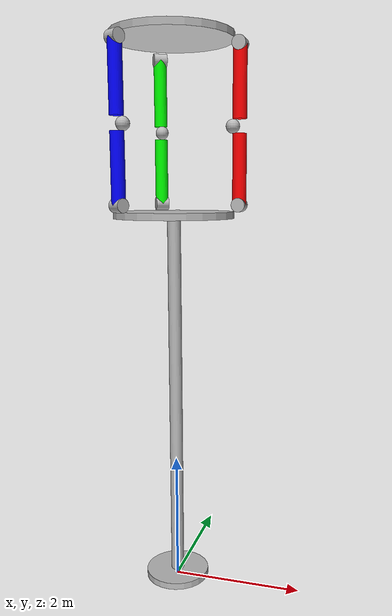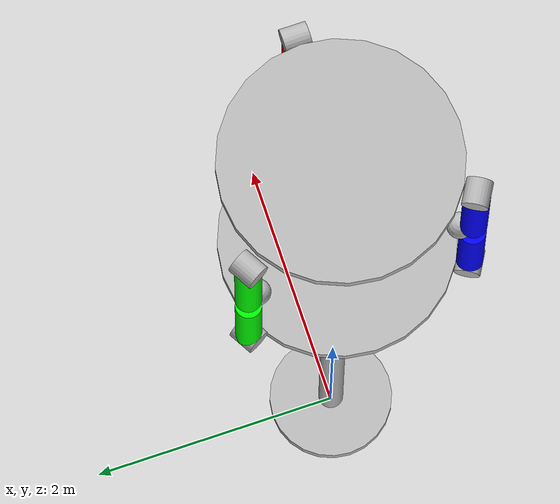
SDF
<sdf version='1.6'>
	<model name='tsst'>
		<self_collide>true</self_collide>

		<link name='pedestal'>
			<pose frame=''>0 0 0 0 -0 0</pose>
			<inertial>
				<pose frame=''>0 0 0 0 -0 0</pose>
				<mass>2</mass>
				<inertia>
					<ixx>6.65125</ixx>
					<ixy>0</ixy>
					<ixz>0</ixz>
					<iyy>6.65125</iyy>
					<iyz>4.44089e-16</iyz>
					<izz>2</izz>
				</inertia>
			</inertial>

			<visual name='pedestal_pole_visual'>
				<pose frame=''>0 0 2.9 0 -0 0</pose>
				<geometry>
					<cylinder>
						<length>5.8</length>
						<radius>0.1</radius>
					</cylinder>
				</geometry>
			</visual>

			<visual name='pedestal_base_visual'>
				<pose frame=''>0 0 0.05 0 -0 0</pose>
				<geometry>
					<cylinder>
						<length>0.1</length>
						<radius>0.5</radius>
					</cylinder>
				</geometry>
			</visual>
		</link>

		<joint name='glue_pedestal_to_world' type='revolute'>
			<child>pedestal</child>
			<parent>world</parent>
			<axis>
				<limit>
					<lower>0</lower>
					<upper>0</upper>
				</limit>
				<dynamics>
					<damping>0</damping>
					<friction>0</friction>
					<spring_reference>0</spring_reference>
					<spring_stiffness>0</spring_stiffness>
				</dynamics>
				<use_parent_model_frame>1</use_parent_model_frame>
				<xyz>0 0 1</xyz>
			</axis>
		</joint>

		<link name='base_plate'>
			<pose frame=''>0 0 5.85 0 -0 0</pose>
			<visual name='base_plate_visual'>
				<pose frame=''>0 0 0 0 -0 0</pose>
				<geometry>
					<cylinder>
						<length>0.1</length>
						<radius>0.9</radius>
					</cylinder>
				</geometry>
			</visual>
			<collision name='base_plate_collision'>
				<pose frame=''>0 0 0 0 -0 0</pose>
				<geometry>
					<cylinder>
						<length>0.1</length>
						<radius>0.9</radius>
					</cylinder>
				</geometry>
			</collision>
		</link>

		<joint name='glue_base_to_pedestal' type='revolute'>
			<child>base_plate</child>
			<parent>pedestal</parent>
			<axis>
				<limit>
					<lower>0</lower>
					<upper>0</upper>
				</limit>
				<dynamics>
					<damping>0</damping>
					<friction>0</friction>
					<spring_reference>0</spring_reference>
					<spring_stiffness>0</spring_stiffness>
				</dynamics>
				<use_parent_model_frame>1</use_parent_model_frame>
				<xyz>0 0 1</xyz>
			</axis>
		</joint>

		<link name='base_leg_1'>
			<pose frame=''>1 0 6 0 -0 0</pose>
			<visual name='base_leg_1_visual'>
				<pose frame=''>0 0 0.5 0 -0 0</pose>
				<geometry>
					<cylinder>
						<length>1.0</length>
						<radius>0.1</radius>
					</cylinder>
				</geometry>
				<material>
					<ambient>0.5 0 0 1</ambient>
					<diffuse>1.0 0 0 1</diffuse>
					<specular>0.1 0.1 0.1 1</specular>
					<emissive>0 0 0 0</emissive>
				</material>
			</visual>
			<collision name='base_leg_1_collision'>
				<pose frame=''>0 0 0.5 0 -0 0</pose>
				<geometry>
					<cylinder>
						<length>1.0</length>
						<radius>0.1</radius>
					</cylinder>
				</geometry>
			</collision>
			<inertial>
				<pose frame=''>0 0 0.5 0 -0 0</pose>
				<mass>1</mass>
				<inertia>
					<ixx>0.1</ixx>
					<ixy>0</ixy>
					<ixz>0</ixz>
					<iyy>0.1</iyy>
					<iyz>0</iyz>
					<izz>0.005</izz>
				</inertia>
			</inertial>
			<visual name='base_leg_1_plate_revolute_visual'>
				<pose frame=''>0 0 0 1.5707963267948966 -0 0</pose>
				<geometry>
					<cylinder>
						<length>0.2</length>
						<radius>0.1</radius>
					</cylinder>
				</geometry>
			</visual>
			<visual name='base_leg_1_ball_visual'>
				<pose frame=''>-0.1 0 1.1 0 -0 0</pose>
				<geometry>
					<sphere>
						<radius>0.1</radius>
					</sphere>
				</geometry>
			</visual>
		</link>

		<joint name='joint1' type='revolute'>
			<child>base_leg_1</child>
			<parent>base_plate</parent>
			<axis>
				<limit>
					<lower>-1.5707963267948966</lower>
					<upper>+3.1415926535897936</upper>
				</limit>
				<dynamics>
					<damping>0</damping>
					<friction>0</friction>
					<spring_reference>0</spring_reference>
					<spring_stiffness>0</spring_stiffness>
				</dynamics>
				<use_parent_model_frame>1</use_parent_model_frame>
				<xyz>0 1 0</xyz>
			</axis>
		</joint>

		<link name='base_leg_2'>
			<pose frame=''>-0.5 0.8660254037844387 6 0 -0 2.0943951023931953</pose>
			<visual name='base_leg_2_visual'>
				<pose frame=''>0 0 0.5 0 -0 0</pose>
				<geometry>
					<cylinder>
						<length>1.0</length>
						<radius>0.1</radius>
					</cylinder>
				</geometry>
				<material>
					<ambient>0 0.5 0 1</ambient>
					<diffuse>0 1.0 0 1</diffuse>
					<specular>0.1 0.1 0.1 1</specular>
					<emissive>0 0 0 0</emissive>
				</material>
			</visual>
			<collision name='base_leg_2_collision'>
				<pose frame=''>0 0 0.5 0 -0 0</pose>
				<geometry>
					<cylinder>
						<length>1.0</length>
						<radius>0.1</radius>
					</cylinder>
				</geometry>
			</collision>
			<inertial>
				<pose frame=''>0 0 0.5 0 -0 0</pose>
				<mass>1</mass>
				<inertia>
					<ixx>0.1</ixx>
					<ixy>0</ixy>
					<ixz>0</ixz>
					<iyy>0.1</iyy>
					<iyz>0</iyz>
					<izz>0.005</izz>
				</inertia>
			</inertial>
			<visual name='base_leg_2_plate_revolute_visual'>
				<pose frame=''>0 0 0 1.5707963267948966 -0 0</pose>
				<geometry>
					<cylinder>
						<length>0.2</length>
						<radius>0.1</radius>
					</cylinder>
				</geometry>
			</visual>
			<visual name='base_leg_2_ball_visual'>
				<pose frame=''>-0.1 0 1.1 0 -0 0</pose>
				<geometry>
					<sphere>
						<radius>0.1</radius>
					</sphere>
				</geometry>
			</visual>
		</link>

		<joint name='joint2' type='revolute'>
			<child>base_leg_2</child>
			<parent>base_plate</parent>
			<axis>
				<limit>
					<lower>-1.5707963267948966</lower>
					<upper>+3.1415926535897936</upper>
				</limit>
				<dynamics>
					<damping>0</damping>
					<friction>0</friction>
					<spring_reference>0</spring_reference>
					<spring_stiffness>0</spring_stiffness>
				</dynamics>
				<use_parent_model_frame>1</use_parent_model_frame>
				<xyz>-0.8660254037844386 -0.5 0</xyz>
			</axis>
		</joint>

		<link name='base_leg_3'>
			<pose frame=''>-0.5 -0.8660254037844386 6 0 -0 4.1887902047863905</pose>
			<visual name='base_leg_3_visual'>
				<pose frame=''>0 0 0.5 0 -0 0</pose>
				<geometry>
					<cylinder>
						<length>1.0</length>
						<radius>0.1</radius>
					</cylinder>
				</geometry>
				<material>
					<ambient>0 0 0.5 1</ambient>
					<diffuse>0 0 1.0 1</diffuse>
					<specular>0.1 0.1 0.1 1</specular>
					<emissive>0 0 0 0</emissive>
				</material>
			</visual>
			<collision name='base_leg_3_collision'>
				<pose frame=''>0 0 0.5 0 -0 0</pose>
				<geometry>
					<cylinder>
						<length>1.0</length>
						<radius>0.1</radius>
					</cylinder>
				</geometry>
			</collision>
			<inertial>
				<pose frame=''>0 0 0.5 0 -0 0</pose>
				<mass>1</mass>
				<inertia>
					<ixx>0.1</ixx>
					<ixy>0</ixy>
					<ixz>0</ixz>
					<iyy>0.1</iyy>
					<iyz>0</iyz>
					<izz>0.005</izz>
				</inertia>
			</inertial>
			<visual name='base_leg_3_plate_revolute_visual'>
				<pose frame=''>0 0 0 1.5707963267948966 -0 0</pose>
				<geometry>
					<cylinder>
						<length>0.2</length>
						<radius>0.1</radius>
					</cylinder>
				</geometry>
			</visual>
			<visual name='base_leg_3_ball_visual'>
				<pose frame=''>-0.1 0 1.1 0 -0 0</pose>
				<geometry>
					<sphere>
						<radius>0.1</radius>
					</sphere>
				</geometry>
			</visual>
		</link>

		<joint name='joint3' type='revolute'>
			<child>base_leg_3</child>
			<parent>base_plate</parent>
			<axis>
				<limit>
					<lower>-1.5707963267948966</lower>
					<upper>+3.1415926535897936</upper>
				</limit>
				<dynamics>
					<damping>0</damping>
					<friction>0</friction>
					<spring_reference>0</spring_reference>
					<spring_stiffness>0</spring_stiffness>
				</dynamics>
				<use_parent_model_frame>1</use_parent_model_frame>
				<xyz>0.5 -0.2886751345948129 0</xyz>
			</axis>
		</joint>

		<link name='distal_plate'>
			<pose frame=''>0 0 8.35 0 -0 0</pose>
			<visual name='distal_plate_visual'>
				<pose frame=''>0 0 0 0 -0 0</pose>
				<geometry>
					<cylinder>
						<length>0.1</length>
						<radius>0.9</radius>
					</cylinder>
				</geometry>
			</visual>
			<collision name='base_plate_collision'>
				<pose frame=''>0 0 0 0 -0 0</pose>
				<geometry>
					<cylinder>
						<length>0.1</length>
						<radius>0.9</radius>
					</cylinder>
				</geometry>
			</collision>
		</link>

		<link name='distal_leg_1'>
			<pose frame=''>0.9 0 7.1 0 -0 0</pose>
			<visual name='distal_leg_1_visual'>
				<pose frame=''>0.1 0 0.6 0 -0 0</pose>
				<geometry>
					<cylinder>
						<length>1.0</length>
						<radius>0.1</radius>
					</cylinder>
				</geometry>
				<material>
					<ambient>0.5 0 0 1</ambient>
					<diffuse>1.0 0 0 1</diffuse>
					<specular>0.1 0.1 0.1 1</specular>
					<emissive>0 0 0 0</emissive>
				</material>
			</visual>
			<collision name='distal_leg_1_collision'>
				<pose frame=''>0.1 0 0.6 0 -0 0</pose>
				<geometry>
					<cylinder>
						<length>1.0</length>
						<radius>0.1</radius>
					</cylinder>
				</geometry>
			</collision>
			<inertial>
				<pose frame=''>0 0 0.6 0 -0 0</pose>
				<mass>1</mass>
				<inertia>
					<ixx>0.1</ixx>
					<ixy>0</ixy>
					<ixz>0</ixz>
					<iyy>0.1</iyy>
					<iyz>0</iyz>
					<izz>0.005</izz>
				</inertia>
			</inertial>
			<visual name='distal_leg_1_plate_revolute_visual'>
				<pose frame=''>0.1 0 1.1 1.5707963267948966 -0 0</pose>
				<geometry>
					<cylinder>
						<length>0.2</length>
						<radius>0.1</radius>
					</cylinder>
				</geometry>
			</visual>
			<visual name='distal_leg_1_ball_visual'>
				<pose frame=''>0 0 0 0 -0 0</pose>
				<geometry>
					<sphere>
						<radius>0.1</radius>
					</sphere>
				</geometry>
			</visual>
		</link>

		<joint name='midjoint1' type='ball'>
			<child>distal_leg_1</child>
			<parent>base_leg_1</parent>
			<axis>
				<limit>
					<lower>-1e+16</lower>
					<upper>1e+16</upper>
				</limit>
				<dynamics>
					<damping>0</damping>
					<friction>0</friction>
					<spring_reference>0</spring_reference>
					<spring_stiffness>0</spring_stiffness>
				</dynamics>
				<use_parent_model_frame>1</use_parent_model_frame>
				<xyz>1 0 0</xyz>
			</axis>
		</joint>

		<link name='distal_leg_2'>
			<pose frame=''>-0.45 0.7794228634059949 7.1 0 -0 2.0943951023931953</pose>
			<visual name='distal_leg_2_visual'>
				<pose frame=''>0.1 0 0.6 0 -0 0</pose>
				<geometry>
					<cylinder>
						<length>1.0</length>
						<radius>0.1</radius>
					</cylinder>
				</geometry>
				<material>
					<ambient>0 0.5 0 1</ambient>
					<diffuse>0 1.0 0 1</diffuse>
					<specular>0.1 0.1 0.1 1</specular>
					<emissive>0 0 0 0</emissive>
				</material>
			</visual>
			<collision name='distal_leg_2_collision'>
				<pose frame=''>0.1 0 0.6 0 -0 0</pose>
				<geometry>
					<cylinder>
						<length>1.0</length>
						<radius>0.1</radius>
					</cylinder>
				</geometry>
			</collision>
			<inertial>
				<pose frame=''>0.1 0 0.6 0 -0 0</pose>
				<mass>1</mass>
				<inertia>
					<ixx>0.1</ixx>
					<ixy>0</ixy>
					<ixz>0</ixz>
					<iyy>0.1</iyy>
					<iyz>0</iyz>
					<izz>0.005</izz>
				</inertia>
			</inertial>
			<visual name='distal_leg_2_plate_revolute_visual'>
				<pose frame=''>0.1 0 1.1 1.5707963267948966 -0 0</pose>
				<geometry>
					<cylinder>
						<length>0.2</length>
						<radius>0.1</radius>
					</cylinder>
				</geometry>
			</visual>
			<visual name='distal_leg_2_ball_visual'>
				<pose frame=''>0 0 0 0 -0 0</pose>
				<geometry>
					<sphere>
						<radius>0.1</radius>
					</sphere>
				</geometry>
			</visual>
		</link>

		<joint name='midjoint2' type='ball'>
			<child>distal_leg_2</child>
			<parent>base_leg_2</parent>
			<axis>
				<limit>
					<lower>-1e+16</lower>
					<upper>1e+16</upper>
				</limit>
				<dynamics>
					<damping>0</damping>
					<friction>0</friction>
					<spring_reference>0</spring_reference>
					<spring_stiffness>0</spring_stiffness>
				</dynamics>
				<use_parent_model_frame>1</use_parent_model_frame>
				<xyz>1 0 0</xyz>
			</axis>
		</joint>

		<link name='distal_leg_3'>
			<pose frame=''>-0.45 -0.7794228634059949 7.1 0 -0 4.1887902047863905</pose>
			<visual name='distal_leg_3_visual'>
				<pose frame=''>0.1 0 0.6 0 -0 0</pose>
				<geometry>
					<cylinder>
						<length>1.0</length>
						<radius>0.1</radius>
					</cylinder>
				</geometry>
				<material>
					<ambient>0 0 0.5 1</ambient>
					<diffuse>0 0 1.0 1</diffuse>
					<specular>0.1 0.1 0.1 1</specular>
					<emissive>0 0 0 0</emissive>
				</material>
			</visual>
			<collision name='distal_leg_3_collision'>
				<pose frame=''>0.1 0 0.6 0 -0 0</pose>
				<geometry>
					<cylinder>
						<length>1.0</length>
						<radius>0.1</radius>
					</cylinder>
				</geometry>
			</collision>
			<inertial>
				<pose frame=''>0.1 0 0.6 0 -0 0</pose>
				<mass>1</mass>
				<inertia>
					<ixx>0.1</ixx>
					<ixy>0</ixy>
					<ixz>0</ixz>
					<iyy>0.1</iyy>
					<iyz>0</iyz>
					<izz>0.005</izz>
				</inertia>
			</inertial>
			<visual name='distal_leg_3_plate_revolute_visual'>
				<pose frame=''>0.1 0 1.1 1.5707963267948966 -0 0</pose>
				<geometry>
					<cylinder>
						<length>0.2</length>
						<radius>0.1</radius>
					</cylinder>
				</geometry>
			</visual>
			<visual name='distal_leg_3_ball_visual'>
				<pose frame=''>0 0 0.0 0 -0 0</pose>
				<geometry>
					<sphere>
						<radius>0.1</radius>
					</sphere>
				</geometry>
			</visual>
		</link>

		<joint name='midjoint3' type='ball'>
			<child>distal_leg_3</child>
			<parent>base_leg_3</parent>
			<axis>
				<limit>
					<lower>-1e+16</lower>
					<upper>1e+16</upper>
				</limit>
				<dynamics>
					<damping>0</damping>
					<friction>0</friction>
					<spring_reference>0</spring_reference>
					<spring_stiffness>0</spring_stiffness>
				</dynamics>
				<use_parent_model_frame>1</use_parent_model_frame>
				<xyz>1 0 0</xyz>
			</axis>
		</joint>

		<joint name='distal_joint1' type='revolute'>
			<pose frame=''>1 0 -0.15 0 -0 0</pose>
			<child>distal_plate</child>
			<parent>distal_leg_1</parent>
			<axis>
				<limit>
					<lower>-1.5707963267948966</lower>
					<upper>+3.1415926535897936</upper>
				</limit>
				<dynamics>
					<damping>0</damping>
					<friction>0</friction>
					<spring_reference>0</spring_reference>
					<spring_stiffness>0</spring_stiffness>
				</dynamics>
				<use_parent_model_frame>1</use_parent_model_frame>
				<xyz>0 1 0</xyz>
			</axis>
		</joint>

		<joint name='distal_joint2' type='revolute'>
			<pose frame=''>-0.5 0.8660254037844387 -0.15 0 -0 0</pose>
			<child>distal_plate</child>
			<parent>distal_leg_2</parent>
			<axis>
				<limit>
					<lower>-1.5707963267948966</lower>
					<upper>+3.1415926535897936</upper>
				</limit>
				<dynamics>
					<damping>0</damping>
					<friction>0</friction>
					<spring_reference>0</spring_reference>
					<spring_stiffness>0</spring_stiffness>
				</dynamics>
				<use_parent_model_frame>1</use_parent_model_frame>
				<xyz>-0.8660254037844388 -0.5 0</xyz>
			</axis>
		</joint>

		<joint name='distal_joint3' type='revolute'>
			<pose frame=''>-0.5 -0.8660254037844387 -0.15 0 -0 0</pose>
			<child>distal_plate</child>
			<parent>distal_leg_3</parent>
			<axis>
				<limit>
					<lower>-1.5707963267948966</lower>
					<upper>+3.1415926535897936</upper>
				</limit>
				<dynamics>
					<damping>0</damping>
					<friction>0</friction>
					<spring_reference>0</spring_reference>
					<spring_stiffness>0</spring_stiffness>
				</dynamics>
				<use_parent_model_frame>1</use_parent_model_frame>
				<xyz>0.8660254037844384 -0.5 0</xyz>
			</axis>
		</joint>
	</model>
</sdf>
